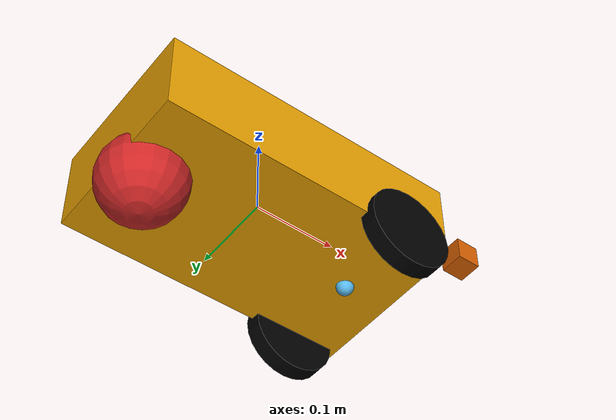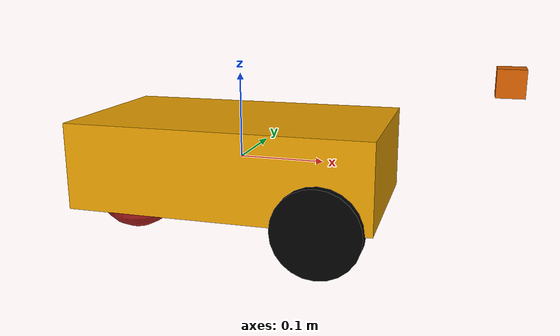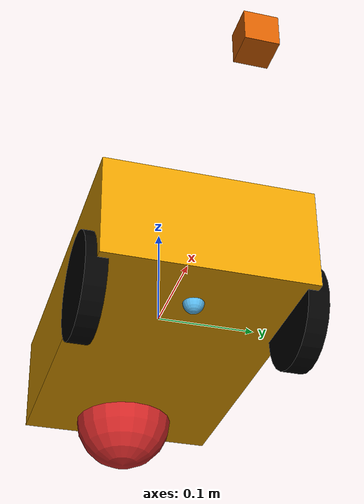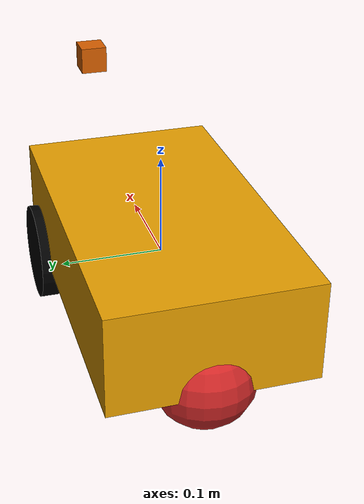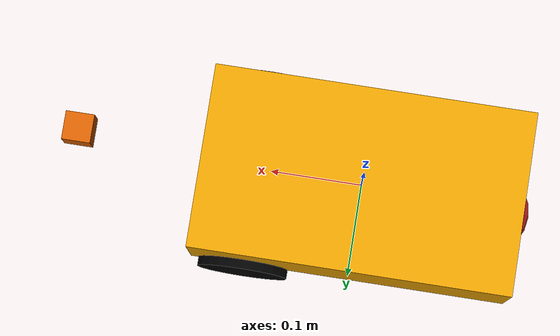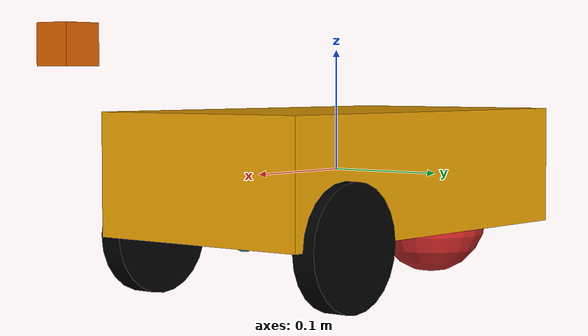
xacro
<?xml version='1.0'?>

<robot name="bot"
  xmlns:xacro="http://www.ros.org/wiki/xacro">
  <xacro:property name="robotname" value="bot"/>
  <xacro:property name="set_gazebo_plugins" value="1"/>

  <xacro:macro name="default_origin">
    <origin xyz="0 0 0" rpy="0 0 0"/>
  </xacro:macro>

<!-- BASE_LINK PARAMETERS -->
  <xacro:property name="bot_mass" value="25.0"/>
  <xacro:property name="bot_width" value="0.2"/>
  <xacro:property name="bot_length" value="0.35"/>
  <xacro:property name="bot_height" value="0.1"/>
  <xacro:macro name="base_geometry">
    <geometry>
      <box size="${bot_length} ${bot_width} ${bot_height}"/>
    </geometry>
  </xacro:macro>

  <xacro:macro name="default_inertia">
    <inertia ixx="0.6" ixy="0" ixz="0" iyy="0.65" iyz="0" izz="0.21"/>
  </xacro:macro>
<!-- BASE_FOOTPRINT PARAMETERS -->
  <xacro:property name ="base_footprint_size" value="0.01"/>
<!-- BALL PARAMETERS -->
  <xacro:property name="ball_radius" value="0.05"/>
  <xacro:property name="ball_mass" value="0.3"/>
  <xacro:macro name="ball_inertia">
   <inertia ixx="0.01" ixy="0" ixz="0" iyy="0.01" iyz="0" izz="0.01" />
  </xacro:macro>

<!-- WHEEL PARAMETERS -->
  <xacro:property name="wheel_mass" value="2"/>
  <xacro:property name="wheel_radius" value="${ball_radius}"/>
  <xacro:property name="wheel_thickness" value="0.02"/>
  <xacro:property name="wheel_base_length_coefficient" value="${1/3}"/>

  <xacro:macro name="wheel_geometry">
    <geometry>
      <cylinder radius="${wheel_radius}" length="${wheel_thickness}"/>
    </geometry>
    <origin xyz="0 0 0" rpy="0 ${pi/2} ${pi/2}"/>
  </xacro:macro>

  <xacro:macro name="wheel_inertia">
    <inertia ixx="0.1" ixy="0.0" ixz="0.0" iyy="0.1" iyz="0.0" izz="0.1"/>
  </xacro:macro>

  <xacro:macro name="wheel" params="name *origin_wheel">
    <joint name="${name}_wheel_joint" type="continuous">
      <axis xyz="0 1 0" rpy="0 0 0" />
      <parent link="base_link"/>
      <child link="${name}_wheel"/>
      <xacro:insert_block name="origin_wheel"/>
    </joint>

    <link name="${name}_wheel">
      <visual>
        <material name="black">
          <color rgba="0 0 0 1"/>
        </material>
        <xacro:wheel_geometry/>
      </visual>
      <collision>
        <xacro:wheel_geometry/>
      </collision>
      <inertial>
        <xacro:wheel_geometry/>
        <mass value="${wheel_mass}"/>
        <xacro:wheel_inertia/>
      </inertial>
    </link>
      <!-- GAZEBO settings for wheels -->
    <gazebo reference="${name}_wheel">
      <mu1>1000000.0</mu1>
      <mu2>1000000.0</mu2>
      <minDepth>0.0001 </minDepth>
      <fdir1 value = "1 0 0"/>
      <kp>100000.0</kp>
      <kd>100000 </kd>
      <material>Gazebo/Black</material>
    </gazebo>
  </xacro:macro>

<!-- DEFINITIONS OF ROBOT -->
  <!-- BASE LINK -->
  <link name='base_link'>
    <pose>0 0 0 0 0 0</pose>

    <inertial>
      <mass value="${bot_mass}"/>
      <xacro:default_inertia/>
    </inertial>

    <collision name='collision'>
      <xacro:default_origin/>
      <xacro:base_geometry/>
    </collision>

    <visual name='visual'>
       <xacro:default_origin/>
       <xacro:base_geometry/>
    </visual>
  </link>
  <!-- BASE_FOOTPRINT -->
  <link name='base_footprint'>
    <collision name="base_footprint_collision">
      <xacro:default_origin/>
      <geometry>
        <sphere radius="${base_footprint_size}"/>
      </geometry>
    </collision>
    <visual name="ball_visual">
      <xacro:default_origin/>
      <geometry>
        <sphere radius="${base_footprint_size}"/>
      </geometry>
    </visual>
    <inertial>
      <mass value="0.001"/>
      <xacro:default_origin/>
      <inertia ixx="0.0001" ixy="0" ixz="0" iyy="0.0001" iyz="0" izz="0.0001"/>
    </inertial>
  </link>

  <joint type="fixed" name="base_ftprnt__base_link_joint">
    <origin xyz="${bot_length*wheel_base_length_coefficient} 0 ${-bot_height/2}" rpy="0 0 0"/>
    <child link="base_footprint"/>
    <parent link="base_link"/>
    <axis xyz="0 0 0" rpy="0 0 0"/>
  </joint>

  <!-- CASTER BALL -->

  <link name="ball">
    <collision name="ball_collision">
      <xacro:default_origin/>
      <geometry>
        <sphere radius="${ball_radius}"/>
      </geometry>
    </collision>
    <visual name="ball_visual">
      <xacro:default_origin/>
      <geometry>
        <sphere radius="${ball_radius}"/>
      </geometry>
    </visual>
    <inertial>
      <mass value="${ball_mass}"/>
      <xacro:default_origin/>
      <xacro:ball_inertia/>
    </inertial>
  </link>

  <joint type="fixed" name="ball_joint">
    <origin xyz="${-bot_length*4/10} 0 ${-bot_height/2}" rpy="0 0 0"/>
    <child link="ball"/>
    <parent link="base_link"/>
    <axis xyz="0 0 0" rpy="0 0 0"/>

  </joint>

  <!-- WHEELS -->

  <xacro:wheel name="right">
    <origin xyz="${bot_length*wheel_base_length_coefficient} ${-bot_width/2} ${-bot_height/2}" rpy="0 0 0"/>
  </xacro:wheel>

  <xacro:wheel name="left">
    <origin xyz="${bot_length*wheel_base_length_coefficient} ${bot_width/2} ${-bot_height/2}" rpy="0 0 0"/>
  </xacro:wheel>

  <!-- LIDAR -->

  <joint name="lidar_joint" type="fixed">
    <axis xyz="0 0 0" />
    <origin xyz="${bot_length*6/7} 0 ${bot_height}" rpy="0 0 0"/>
    <parent link="base_link"/>
    <child link="lidar"/>
  </joint>

  <link name="lidar">
    <collision>
      <origin xyz="0 0 0" rpy="0 0 0"/>
      <geometry>
        <box size="0.03 0.03 0.03"/>
      </geometry>
    </collision>

    <visual>
      <origin xyz="0 0 0" rpy="0 0 0"/>
      <geometry>
        <box size="0.03 0.03 0.03"/>
      </geometry>
    </visual>
    <inertial>
      <mass value="1e-5" />
      <origin xyz="0 0 0" rpy="0 0 0"/>
      <inertia ixx="1e-6" ixy="0" ixz="0" iyy="1e-6" iyz="0" izz="1e-6" />
    </inertial>
  </link>
  <!-- GAZEBO PLUGINS -->
  <gazebo>
    <plugin name="differential_drive_controller" filename="libgazebo_ros_diff_drive.so">
      <alwaysOn>true</alwaysOn>
      <publishTf>1</publishTf>
      <updateRate>50</updateRate>
      <leftJoint>left_wheel_joint</leftJoint>
      <rightJoint>right_wheel_joint</rightJoint>
      <wheelSeparation>0.2</wheelSeparation>
      <wheelDiameter>0.05</wheelDiameter>
      <torque>75</torque>
      <commandTopic>cmd_vel</commandTopic>
      <odometryTopic>odom</odometryTopic>
      <odometryFrame>odom</odometryFrame>
      <robotBaseFrame>base_link</robotBaseFrame>
      <odometrySource>world</odometrySource>
      <publishWheelTF>true</publishWheelTF>
      <publishWheelJointState>true</publishWheelJointState>
    </plugin>
  </gazebo>

  <gazebo reference="ball">
    <kp>1000000.0</kp>
    <kd>10000</kd>
    <dampingFactor>0.0</dampingFactor>
    <mu1>0.00</mu1>
    <mu2>0.00</mu2>
    <fdir1 value = "1 0 0"/>
    <maxVel>15.0</maxVel>
    <material>Gazebo/Red</material>
  </gazebo>

  <gazebo reference="lidar">
    <sensor type="ray" name="head_hokuyo_sensor_front">
      <pose>0 0 0 0 0 0</pose>
      <visualize>true</visualize>
      <update_rate>40</update_rate>
      <ray>
        <scan>
          <horizontal>
            <samples>720</samples>
            <resolution>1</resolution>
            <min_angle>-1.3</min_angle>
            <max_angle>1.3</max_angle>
          </horizontal>
        </scan>
        <range>
          <min>0.1</min>
          <max>30.0</max>
          <resolution>0.01</resolution>
        </range>
        <noise>
          <type>gaussian</type>
          <mean>0.0</mean>
          <stddev>0.01</stddev>
        </noise>
      </ray>
      <plugin name="gazebo_ros_head_hokuyo_controller" filename="libgazebo_ros_laser.so">
        <topicName>scan</topicName>
        <frameName>lidar</frameName>
      </plugin>
    </sensor>
  </gazebo>
</robot>
